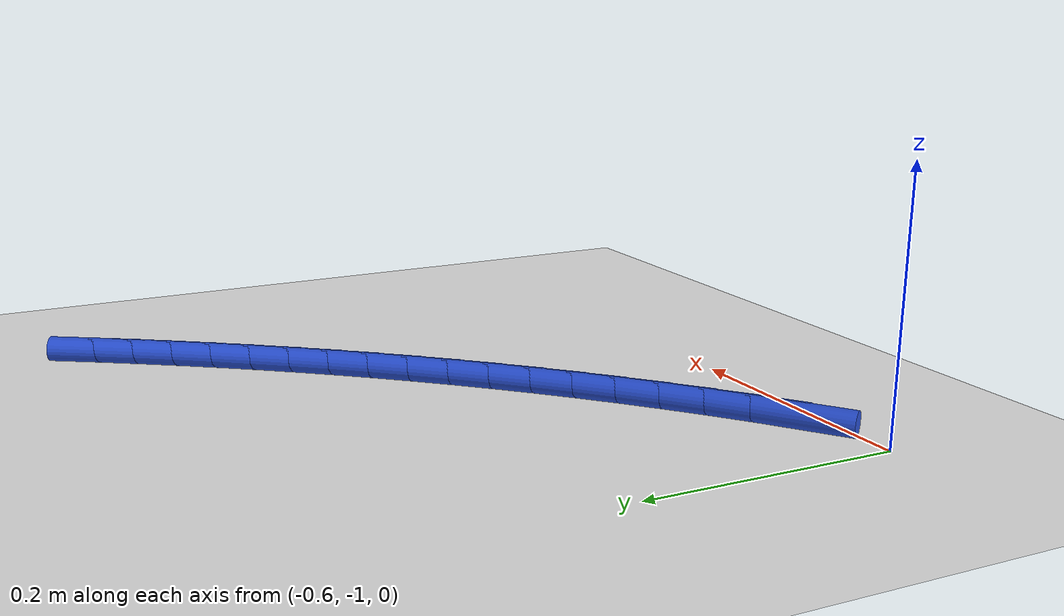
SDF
<sdf version="1.6">
 <world name="default">
  <model name="ground_plane">
   <static>1</static>
   <link name="link">
    <collision name="collision">
     <geometry><plane><normal>0 0 1</normal><size>100 100</size></plane></geometry>
     <surface><friction><ode><mu>100</mu><mu2>50</mu2></ode></friction></surface>
    </collision>
    <visual name="visual">
     <cast_shadows>0</cast_shadows>
     <geometry><plane><normal>0 0 1</normal><size>100 100</size></plane></geometry>
     <material>
      <script><uri>file://media/materials/scripts/gazebo.material</uri><name>Gazebo/WhiteGlow</name></script>
     </material>
    </visual>
   </link>
  </model>
  <model name="line">
   <link name="link_175">
    <pose>-0.5379926738628052 -0.9735499489070621 0.01 0 1.57 0.6514745906074462</pose>
    <collision name="collision">
     <geometry><cylinder><radius>0.01</radius><length>0.08</length></cylinder></geometry>
    </collision>
    <visual name="visual">
     <material>
      <script><name>Gazebo/Blue</name><uri>file://media/materials/scripts/gazebo.material</uri></script>
     </material>
     <geometry><cylinder><radius>0.01</radius><length>0.08</length></cylinder></geometry>
    </visual>
   </link>
   <link name="link_176">
    <pose>-0.511259207655718 -0.9531647777505825 0.01 0 1.57 0.6868464574900411</pose>
    <collision name="collision">
     <geometry><cylinder><radius>0.01</radius><length>0.08</length></cylinder></geometry>
    </collision>
    <visual name="visual">
     <material>
      <script><name>Gazebo/Blue</name><uri>file://media/materials/scripts/gazebo.material</uri></script>
     </material>
     <geometry><cylinder><radius>0.01</radius><length>0.08</length></cylinder></geometry>
    </visual>
   </link>
   <link name="link_177">
    <pose>-0.4852367322415165 -0.9318250941691993 0.01 0 1.57 0.7146010309680224</pose>
    <collision name="collision">
     <geometry><cylinder><radius>0.01</radius><length>0.08</length></cylinder></geometry>
    </collision>
    <visual name="visual">
     <material>
      <script><name>Gazebo/Blue</name><uri>file://media/materials/scripts/gazebo.material</uri></script>
     </material>
     <geometry><cylinder><radius>0.01</radius><length>0.08</length></cylinder></geometry>
    </visual>
   </link>
   <link name="link_178">
    <pose>-0.45993203884235884 -0.9098717363765406 0.01 0 1.57 0.7393096908705251</pose>
    <collision name="collision">
     <geometry><cylinder><radius>0.01</radius><length>0.08</length></cylinder></geometry>
    </collision>
    <visual name="visual">
     <material>
      <script><name>Gazebo/Blue</name><uri>file://media/materials/scripts/gazebo.material</uri></script>
     </material>
     <geometry><cylinder><radius>0.01</radius><length>0.08</length></cylinder></geometry>
    </visual>
   </link>
   <link name="link_179">
    <pose>-0.4353339667189283 -0.8874426118527182 0.01 0 1.57 0.7636234760684878</pose>
    <collision name="collision">
     <geometry><cylinder><radius>0.01</radius><length>0.08</length></cylinder></geometry>
    </collision>
    <visual name="visual">
     <material>
      <script><name>Gazebo/Blue</name><uri>file://media/materials/scripts/gazebo.material</uri></script>
     </material>
     <geometry><cylinder><radius>0.01</radius><length>0.08</length></cylinder></geometry>
    </visual>
   </link>
   <link name="link_180">
    <pose>-0.4114200752729999 -0.8645481194462462 0.01 0 1.57 0.7875248568330326</pose>
    <collision name="collision">
     <geometry><cylinder><radius>0.01</radius><length>0.08</length></cylinder></geometry>
    </collision>
    <visual name="visual">
     <material>
      <script><name>Gazebo/Blue</name><uri>file://media/materials/scripts/gazebo.material</uri></script>
     </material>
     <geometry><cylinder><radius>0.01</radius><length>0.08</length></cylinder></geometry>
    </visual>
   </link>
   <link name="link_181">
    <pose>-0.38816774902489615 -0.8411966811285446 0.01 0 1.57 0.8109582144961467</pose>
    <collision name="collision">
     <geometry><cylinder><radius>0.01</radius><length>0.08</length></cylinder></geometry>
    </collision>
    <visual name="visual">
     <material>
      <script><name>Gazebo/Blue</name><uri>file://media/materials/scripts/gazebo.material</uri></script>
     </material>
     <geometry><cylinder><radius>0.01</radius><length>0.08</length></cylinder></geometry>
    </visual>
   </link>
   <link name="link_182">
    <pose>-0.3655543724949396 -0.8173967188710328 0.01 0 1.57 0.8338714578601103</pose>
    <collision name="collision">
     <geometry><cylinder><radius>0.01</radius><length>0.08</length></cylinder></geometry>
    </collision>
    <visual name="visual">
     <material>
      <script><name>Gazebo/Blue</name><uri>file://media/materials/scripts/gazebo.material</uri></script>
     </material>
     <geometry><cylinder><radius>0.01</radius><length>0.08</length></cylinder></geometry>
    </visual>
   </link>
   <link name="link_183">
    <pose>-0.3435573302034523 -0.7931566546451301 0.01 0 1.57 0.8562163969754031</pose>
    <collision name="collision">
     <geometry><cylinder><radius>0.01</radius><length>0.08</length></cylinder></geometry>
    </collision>
    <visual name="visual">
     <material>
      <script><name>Gazebo/Blue</name><uri>file://media/materials/scripts/gazebo.material</uri></script>
     </material>
     <geometry><cylinder><radius>0.01</radius><length>0.08</length></cylinder></geometry>
    </visual>
   </link>
   <link name="link_184">
    <pose>-0.3221540066707577 -0.7684849104222572 0.01 0 1.57 0.8779490215813003</pose>
    <collision name="collision">
     <geometry><cylinder><radius>0.01</radius><length>0.08</length></cylinder></geometry>
    </collision>
    <visual name="visual">
     <material>
      <script><name>Gazebo/Blue</name><uri>file://media/materials/scripts/gazebo.material</uri></script>
     </material>
     <geometry><cylinder><radius>0.01</radius><length>0.08</length></cylinder></geometry>
    </visual>
   </link>
   <link name="link_185">
    <pose>-0.30132178641717805 -0.7433899081738335 0.01 0 1.57 0.8990296842221628</pose>
    <collision name="collision">
     <geometry><cylinder><radius>0.01</radius><length>0.08</length></cylinder></geometry>
    </collision>
    <visual name="visual">
     <material>
      <script><name>Gazebo/Blue</name><uri>file://media/materials/scripts/gazebo.material</uri></script>
     </material>
     <geometry><cylinder><radius>0.01</radius><length>0.08</length></cylinder></geometry>
    </visual>
   </link>
   <link name="link_186">
    <pose>-0.28103805396303577 -0.7178800698712787 0.01 0 1.57 0.9194231915736787</pose>
    <collision name="collision">
     <geometry><cylinder><radius>0.01</radius><length>0.08</length></cylinder></geometry>
    </collision>
    <visual name="visual">
     <material>
      <script><name>Gazebo/Blue</name><uri>file://media/materials/scripts/gazebo.material</uri></script>
     </material>
     <geometry><cylinder><radius>0.01</radius><length>0.08</length></cylinder></geometry>
    </visual>
   </link>
   <link name="link_187">
    <pose>-0.26128019382865325 -0.6919638174860122 0.01 0 1.57 0.9390988104654003</pose>
    <collision name="collision">
     <geometry><cylinder><radius>0.01</radius><length>0.08</length></cylinder></geometry>
    </collision>
    <visual name="visual">
     <material>
      <script><name>Gazebo/Blue</name><uri>file://media/materials/scripts/gazebo.material</uri></script>
     </material>
     <geometry><cylinder><radius>0.01</radius><length>0.08</length></cylinder></geometry>
    </visual>
   </link>
   <link name="link_188">
    <pose>-0.2420255905343533 -0.6656495729894543 0.01 0 1.57 0.9580301973658883</pose>
    <collision name="collision">
     <geometry><cylinder><radius>0.01</radius><length>0.08</length></cylinder></geometry>
    </collision>
    <visual name="visual">
     <material>
      <script><name>Gazebo/Blue</name><uri>file://media/materials/scripts/gazebo.material</uri></script>
     </material>
     <geometry><cylinder><radius>0.01</radius><length>0.08</length></cylinder></geometry>
    </visual>
   </link>
   <link name="link_189">
    <pose>-0.22325162860045786 -0.6389457583530235 0.01 0 1.57 0.976195261667099</pose>
    <collision name="collision">
     <geometry><cylinder><radius>0.01</radius><length>0.08</length></cylinder></geometry>
    </collision>
    <visual name="visual">
     <material>
      <script><name>Gazebo/Blue</name><uri>file://media/materials/scripts/gazebo.material</uri></script>
     </material>
     <geometry><cylinder><radius>0.01</radius><length>0.08</length></cylinder></geometry>
    </visual>
   </link>
   <link name="link_190">
    <pose>-0.20493569254729044 -0.6118607955481413 0.01 0 1.57 0.9935759739855888</pose>
    <collision name="collision">
     <geometry><cylinder><radius>0.01</radius><length>0.08</length></cylinder></geometry>
    </collision>
    <visual name="visual">
     <material>
      <script><name>Gazebo/Blue</name><uri>file://media/materials/scripts/gazebo.material</uri></script>
     </material>
     <geometry><cylinder><radius>0.01</radius><length>0.08</length></cylinder></geometry>
    </visual>
   </link>
   <link name="link_191">
    <pose>-0.18705516689517307 -0.5844031065462265 0.01 0 1.57 1.0101655182438338</pose>
    <collision name="collision">
     <geometry><cylinder><radius>0.01</radius><length>0.08</length></cylinder></geometry>
    </collision>
    <visual name="visual">
     <material>
      <script><name>Gazebo/Blue</name><uri>file://media/materials/scripts/gazebo.material</uri></script>
     </material>
     <geometry><cylinder><radius>0.01</radius><length>0.08</length></cylinder></geometry>
    </visual>
   </link>
   <link name="link_192">
    <pose>-0.16958772106884965 -0.5565811107077805 0.01 0 1.57 1.026939195065292</pose>
    <collision name="collision">
     <geometry><cylinder><radius>0.01</radius><length>0.08</length></cylinder></geometry>
    </collision>
    <visual name="visual">
     <material>
      <script><name>Gazebo/Blue</name><uri>file://media/materials/scripts/gazebo.material</uri></script>
     </material>
     <geometry><cylinder><radius>0.01</radius><length>0.08</length></cylinder></geometry>
    </visual>
   </link>
  </model>
 </world>
</sdf>
